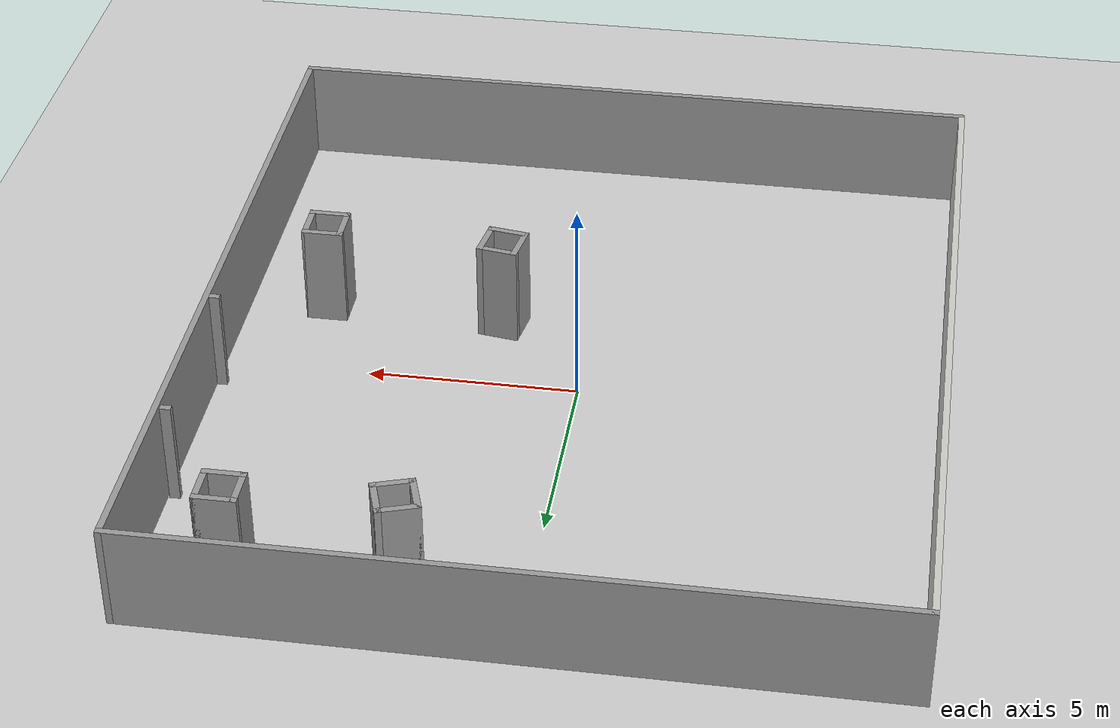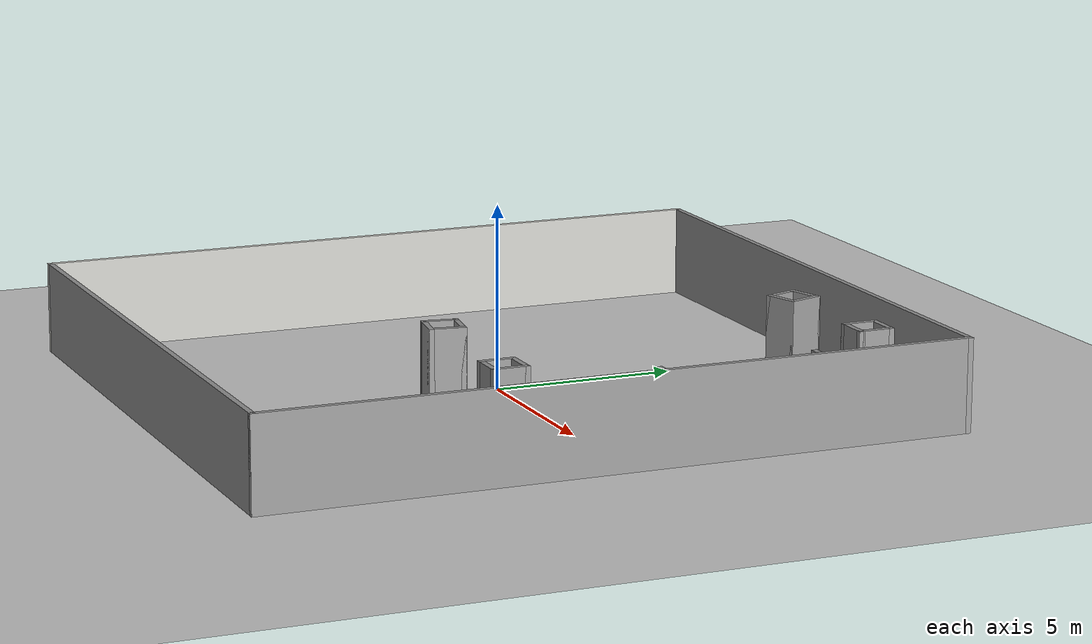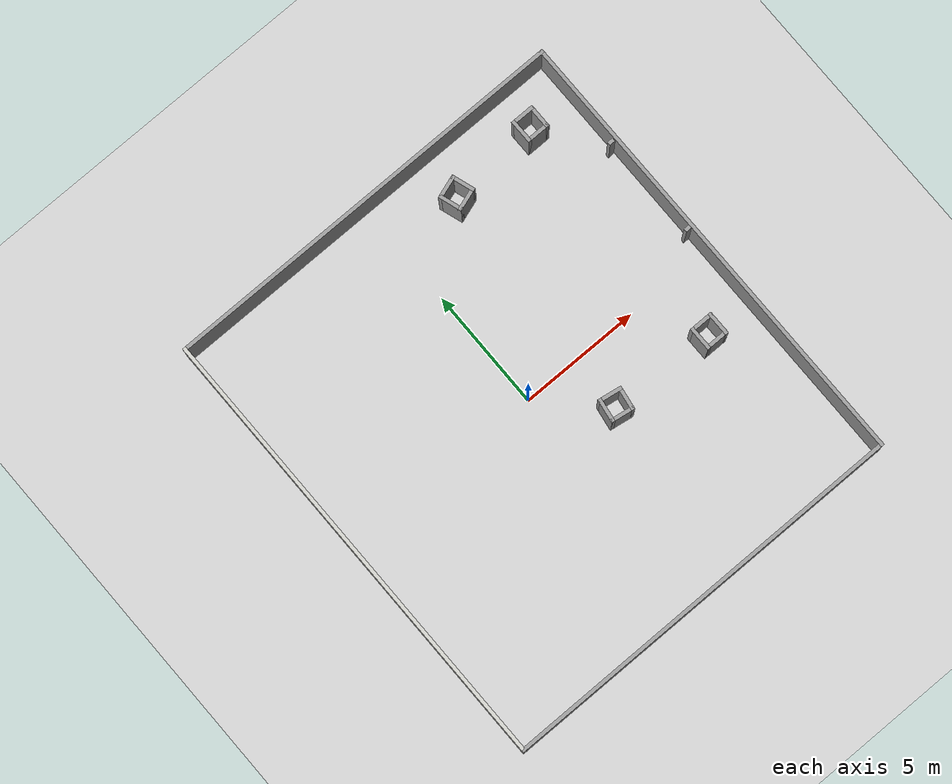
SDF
<sdf version="1.7">
 <world name="default">
  <light name="sun" type="directional">
   <pose>0 0 10 0 -0 0</pose>
   <diffuse>0.8 0.8 0.8 1</diffuse>
   <specular>0.2 0.2 0.2 1</specular>
   <attenuation>
    <range>1000</range>
    <constant>0.9</constant>
    <linear>0.01</linear>
    <quadratic>0.001</quadratic>
   </attenuation>
   <direction>-0.5 0.1 -0.9</direction>
   <spot><inner_angle>0</inner_angle><outer_angle>0</outer_angle><falloff>0</falloff></spot>
  </light>
  <model name="ground_plane">
   <static>1</static>
   <link name="link">
    <collision name="collision">
     <geometry><plane><normal>0 0 1</normal><size>100 100</size></plane></geometry>
     <surface>
      <contact><collide_bitmask>65535</collide_bitmask></contact>
      <friction><ode><mu>100</mu><mu2>50</mu2></ode></friction>
     </surface>
    </collision>
    <visual name="visual">
     <cast_shadows>0</cast_shadows>
     <geometry><plane><normal>0 0 1</normal><size>100 100</size></plane></geometry>
     <material>
      <script><uri>file://media/materials/scripts/gazebo.material</uri><name>Gazebo/Grey</name></script>
     </material>
    </visual>
   </link>
  </model>
  <gravity>0 0 -9.8</gravity>
  <magnetic_field>6e-06 2.3e-05 -4.2e-05</magnetic_field>
  <atmosphere type="adiabatic"/>
  <physics type="ode">
   <max_step_size>0.001</max_step_size>
   <real_time_factor>1</real_time_factor>
   <real_time_update_rate>1000</real_time_update_rate>
  </physics>
  <scene><ambient>0.4 0.4 0.4 1</ambient><background>0.7 0.7 0.7 1</background><shadows>1</shadows></scene>
  <spherical_coordinates>
   <surface_model>EARTH_WGS84</surface_model>
   <latitude_deg>0</latitude_deg>
   <longitude_deg>0</longitude_deg>
   <elevation>0</elevation>
   <heading_deg>0</heading_deg>
  </spherical_coordinates>
  <model name="empty_wall.world">
   <pose>0.015187 -0.215152 0 0 -0 0</pose>
   <link name="Wall_13">
    <collision name="Wall_13_Collision">
     <geometry><box><size>19.25 0.15 2.5</size></box></geometry>
     <pose>0 0 1.25 0 -0 0</pose>
    </collision>
    <visual name="Wall_13_Visual">
     <pose>0 0 1.25 0 -0 0</pose>
     <geometry><box><size>19.25 0.15 2.5</size></box></geometry>
     <material>
      <script><uri>file://media/materials/scripts/gazebo.material</uri><name>Gazebo/CeilingTiled</name></script>
      <ambient>1 1 1 1</ambient>
     </material>
     <meta><layer>0</layer></meta>
    </visual>
    <pose>-8.55 -0 0 0 -0 -1.5708</pose>
   </link>
   <link name="Wall_14">
    <collision name="Wall_14_Collision">
     <geometry><box><size>17.25 0.15 2.5</size></box></geometry>
     <pose>0 0 1.25 0 -0 0</pose>
    </collision>
    <visual name="Wall_14_Visual">
     <pose>0 0 1.25 0 -0 0</pose>
     <geometry><box><size>17.25 0.15 2.5</size></box></geometry>
     <material>
      <script><uri>file://media/materials/scripts/gazebo.material</uri><name>Gazebo/Grey</name></script>
      <ambient>1 1 1 1</ambient>
     </material>
     <meta><layer>0</layer></meta>
    </visual>
    <pose>0 -9.55 0 0 -0 0</pose>
   </link>
   <link name="Wall_15">
    <collision name="Wall_15_Collision">
     <geometry><box><size>19.25 0.15 2.5</size></box></geometry>
     <pose>0 0 1.25 0 -0 0</pose>
    </collision>
    <visual name="Wall_15_Visual">
     <pose>0 0 1.25 0 -0 0</pose>
     <geometry><box><size>19.25 0.15 2.5</size></box></geometry>
     <material>
      <script><uri>file://media/materials/scripts/gazebo.material</uri><name>Gazebo/Grey</name></script>
      <ambient>1 1 1 1</ambient>
     </material>
     <meta><layer>0</layer></meta>
    </visual>
    <pose>8.55 -0 0 0 -0 1.5708</pose>
   </link>
   <link name="Wall_16">
    <collision name="Wall_16_Collision">
     <geometry><box><size>17.25 0.15 2.5</size></box></geometry>
     <pose>0 0 1.25 0 -0 0</pose>
    </collision>
    <visual name="Wall_16_Visual">
     <pose>0 0 1.25 0 -0 0</pose>
     <geometry><box><size>17.25 0.15 2.5</size></box></geometry>
     <material>
      <script><uri>file://media/materials/scripts/gazebo.material</uri><name>Gazebo/Grey</name></script>
      <ambient>1 1 1 1</ambient>
     </material>
     <meta><layer>0</layer></meta>
    </visual>
    <pose>0 9.55 0 0 -0 3.14159</pose>
   </link>
   <static>1</static>
  </model>
  <model name="box1m">
   <pose>7.10884 8.52636 0 0 -0 0</pose>
   <link name="Wall_0">
    <collision name="Wall_0_Collision">
     <geometry><box><size>1 0.15 2.5</size></box></geometry>
     <pose>0 0 1.25 0 -0 0</pose>
    </collision>
    <visual name="Wall_0_Visual">
     <pose>0 0 1.25 0 -0 0</pose>
     <geometry><box><size>1 0.15 2.5</size></box></geometry>
     <material>
      <script><uri>file://media/materials/scripts/gazebo.material</uri><name>Gazebo/Grey</name></script>
      <ambient>1 1 1 1</ambient>
     </material>
     <meta><layer>0</layer></meta>
    </visual>
    <pose>-1.0425 -0.9775 0 0 -0 -1.5708</pose>
   </link>
   <link name="Wall_1">
    <collision name="Wall_1_Collision">
     <geometry><box><size>1 0.15 2.5</size></box></geometry>
     <pose>0 0 1.25 0 -0 0</pose>
    </collision>
    <visual name="Wall_1_Visual">
     <pose>0 0 1.25 0 -0 0</pose>
     <geometry><box><size>1 0.15 2.5</size></box></geometry>
     <material>
      <script><uri>file://media/materials/scripts/gazebo.material</uri><name>Gazebo/Grey</name></script>
      <ambient>1 1 1 1</ambient>
     </material>
     <meta><layer>0</layer></meta>
    </visual>
    <pose>-0.6175 -1.4025 0 0 -0 0</pose>
   </link>
   <link name="Wall_2">
    <collision name="Wall_2_Collision">
     <geometry><box><size>1 0.15 2.5</size></box></geometry>
     <pose>0 0 1.25 0 -0 0</pose>
    </collision>
    <visual name="Wall_2_Visual">
     <pose>0 0 1.25 0 -0 0</pose>
     <geometry><box><size>1 0.15 2.5</size></box></geometry>
     <material>
      <script><uri>file://media/materials/scripts/gazebo.material</uri><name>Gazebo/Grey</name></script>
      <ambient>1 1 1 1</ambient>
     </material>
     <meta><layer>0</layer></meta>
    </visual>
    <pose>-0.1925 -0.9775 0 0 -0 1.5708</pose>
   </link>
   <link name="Wall_3">
    <collision name="Wall_3_Collision">
     <geometry><box><size>1 0.15 2.5</size></box></geometry>
     <pose>0 0 1.25 0 -0 0</pose>
    </collision>
    <visual name="Wall_3_Visual">
     <pose>0 0 1.25 0 -0 0</pose>
     <geometry><box><size>1 0.15 2.5</size></box></geometry>
     <material>
      <script><uri>file://media/materials/scripts/gazebo.material</uri><name>Gazebo/Grey</name></script>
      <ambient>1 1 1 1</ambient>
     </material>
     <meta><layer>0</layer></meta>
    </visual>
    <pose>-0.6175 -0.5525 0 0 -0 3.14159</pose>
   </link>
   <static>1</static>
  </model>
  <model name="box1m_0">
   <pose>7.11731 -1.57017 0 0 -0 0</pose>
   <link name="Wall_0">
    <collision name="Wall_0_Collision">
     <geometry><box><size>1 0.15 2.5</size></box></geometry>
     <pose>0 0 1.25 0 -0 0</pose>
    </collision>
    <visual name="Wall_0_Visual">
     <pose>0 0 1.25 0 -0 0</pose>
     <geometry><box><size>1 0.15 2.5</size></box></geometry>
     <material>
      <script><uri>file://media/materials/scripts/gazebo.material</uri><name>Gazebo/Grey</name></script>
      <ambient>1 1 1 1</ambient>
     </material>
     <meta><layer>0</layer></meta>
    </visual>
    <pose>-1.0425 -0.9775 0 0 -0 -1.5708</pose>
   </link>
   <link name="Wall_1">
    <collision name="Wall_1_Collision">
     <geometry><box><size>1 0.15 2.5</size></box></geometry>
     <pose>0 0 1.25 0 -0 0</pose>
    </collision>
    <visual name="Wall_1_Visual">
     <pose>0 0 1.25 0 -0 0</pose>
     <geometry><box><size>1 0.15 2.5</size></box></geometry>
     <material>
      <script><uri>file://media/materials/scripts/gazebo.material</uri><name>Gazebo/Grey</name></script>
      <ambient>1 1 1 1</ambient>
     </material>
     <meta><layer>0</layer></meta>
    </visual>
    <pose>-0.6175 -1.4025 0 0 -0 0</pose>
   </link>
   <link name="Wall_2">
    <collision name="Wall_2_Collision">
     <geometry><box><size>1 0.15 2.5</size></box></geometry>
     <pose>0 0 1.25 0 -0 0</pose>
    </collision>
    <visual name="Wall_2_Visual">
     <pose>0 0 1.25 0 -0 0</pose>
     <geometry><box><size>1 0.15 2.5</size></box></geometry>
     <material>
      <script><uri>file://media/materials/scripts/gazebo.material</uri><name>Gazebo/Grey</name></script>
      <ambient>1 1 1 1</ambient>
     </material>
     <meta><layer>0</layer></meta>
    </visual>
    <pose>-0.1925 -0.9775 0 0 -0 1.5708</pose>
   </link>
   <link name="Wall_3">
    <collision name="Wall_3_Collision">
     <geometry><box><size>1 0.15 2.5</size></box></geometry>
     <pose>0 0 1.25 0 -0 0</pose>
    </collision>
    <visual name="Wall_3_Visual">
     <pose>0 0 1.25 0 -0 0</pose>
     <geometry><box><size>1 0.15 2.5</size></box></geometry>
     <material>
      <script><uri>file://media/materials/scripts/gazebo.material</uri><name>Gazebo/Grey</name></script>
      <ambient>1 1 1 1</ambient>
     </material>
     <meta><layer>0</layer></meta>
    </visual>
    <pose>-0.6175 -0.5525 0 0 -0 3.14159</pose>
   </link>
   <static>1</static>
  </model>
  <model name="box1m_1">
   <pose>3.04596 8.45832 0 0 -0 0.319034</pose>
   <link name="Wall_0">
    <collision name="Wall_0_Collision">
     <geometry><box><size>1 0.15 2.5</size></box></geometry>
     <pose>0 0 1.25 0 -0 0</pose>
    </collision>
    <visual name="Wall_0_Visual">
     <pose>0 0 1.25 0 -0 0</pose>
     <geometry><box><size>1 0.15 2.5</size></box></geometry>
     <material>
      <script><uri>file://media/materials/scripts/gazebo.material</uri><name>Gazebo/Grey</name></script>
      <ambient>1 1 1 1</ambient>
     </material>
     <meta><layer>0</layer></meta>
    </visual>
    <pose>-1.0425 -0.9775 0 0 -0 -1.5708</pose>
   </link>
   <link name="Wall_1">
    <collision name="Wall_1_Collision">
     <geometry><box><size>1 0.15 2.5</size></box></geometry>
     <pose>0 0 1.25 0 -0 0</pose>
    </collision>
    <visual name="Wall_1_Visual">
     <pose>0 0 1.25 0 -0 0</pose>
     <geometry><box><size>1 0.15 2.5</size></box></geometry>
     <material>
      <script><uri>file://media/materials/scripts/gazebo.material</uri><name>Gazebo/Grey</name></script>
      <ambient>1 1 1 1</ambient>
     </material>
     <meta><layer>0</layer></meta>
    </visual>
    <pose>-0.6175 -1.4025 0 0 -0 0</pose>
   </link>
   <link name="Wall_2">
    <collision name="Wall_2_Collision">
     <geometry><box><size>1 0.15 2.5</size></box></geometry>
     <pose>0 0 1.25 0 -0 0</pose>
    </collision>
    <visual name="Wall_2_Visual">
     <pose>0 0 1.25 0 -0 0</pose>
     <geometry><box><size>1 0.15 2.5</size></box></geometry>
     <material>
      <script><uri>file://media/materials/scripts/gazebo.material</uri><name>Gazebo/Grey</name></script>
      <ambient>1 1 1 1</ambient>
     </material>
     <meta><layer>0</layer></meta>
    </visual>
    <pose>-0.1925 -0.9775 0 0 -0 1.5708</pose>
   </link>
   <link name="Wall_3">
    <collision name="Wall_3_Collision">
     <geometry><box><size>1 0.15 2.5</size></box></geometry>
     <pose>0 0 1.25 0 -0 0</pose>
    </collision>
    <visual name="Wall_3_Visual">
     <pose>0 0 1.25 0 -0 0</pose>
     <geometry><box><size>1 0.15 2.5</size></box></geometry>
     <material>
      <script><uri>file://media/materials/scripts/gazebo.material</uri><name>Gazebo/Grey</name></script>
      <ambient>1 1 1 1</ambient>
     </material>
     <meta><layer>0</layer></meta>
    </visual>
    <pose>-0.6175 -0.5525 0 0 -0 3.14159</pose>
   </link>
   <static>1</static>
  </model>
  <model name="box1m_2">
   <pose>2.91568 -1.52865 0 0 0 -0.155838</pose>
   <link name="Wall_0">
    <collision name="Wall_0_Collision">
     <geometry><box><size>1 0.15 2.5</size></box></geometry>
     <pose>0 0 1.25 0 -0 0</pose>
    </collision>
    <visual name="Wall_0_Visual">
     <pose>0 0 1.25 0 -0 0</pose>
     <geometry><box><size>1 0.15 2.5</size></box></geometry>
     <material>
      <script><uri>file://media/materials/scripts/gazebo.material</uri><name>Gazebo/Grey</name></script>
      <ambient>1 1 1 1</ambient>
     </material>
     <meta><layer>0</layer></meta>
    </visual>
    <pose>-1.0425 -0.9775 0 0 -0 -1.5708</pose>
   </link>
   <link name="Wall_1">
    <collision name="Wall_1_Collision">
     <geometry><box><size>1 0.15 2.5</size></box></geometry>
     <pose>0 0 1.25 0 -0 0</pose>
    </collision>
    <visual name="Wall_1_Visual">
     <pose>0 0 1.25 0 -0 0</pose>
     <geometry><box><size>1 0.15 2.5</size></box></geometry>
     <material>
      <script><uri>file://media/materials/scripts/gazebo.material</uri><name>Gazebo/Grey</name></script>
      <ambient>1 1 1 1</ambient>
     </material>
     <meta><layer>0</layer></meta>
    </visual>
    <pose>-0.6175 -1.4025 0 0 -0 0</pose>
   </link>
   <link name="Wall_2">
    <collision name="Wall_2_Collision">
     <geometry><box><size>1 0.15 2.5</size></box></geometry>
     <pose>0 0 1.25 0 -0 0</pose>
    </collision>
    <visual name="Wall_2_Visual">
     <pose>0 0 1.25 0 -0 0</pose>
     <geometry><box><size>1 0.15 2.5</size></box></geometry>
     <material>
      <script><uri>file://media/materials/scripts/gazebo.material</uri><name>Gazebo/Grey</name></script>
      <ambient>1 1 1 1</ambient>
     </material>
     <meta><layer>0</layer></meta>
    </visual>
    <pose>-0.1925 -0.9775 0 0 -0 1.5708</pose>
   </link>
   <link name="Wall_3">
    <collision name="Wall_3_Collision">
     <geometry><box><size>1 0.15 2.5</size></box></geometry>
     <pose>0 0 1.25 0 -0 0</pose>
    </collision>
    <visual name="Wall_3_Visual">
     <pose>0 0 1.25 0 -0 0</pose>
     <geometry><box><size>1 0.15 2.5</size></box></geometry>
     <material>
      <script><uri>file://media/materials/scripts/gazebo.material</uri><name>Gazebo/Grey</name></script>
      <ambient>1 1 1 1</ambient>
     </material>
     <meta><layer>0</layer></meta>
    </visual>
    <pose>-0.6175 -0.5525 0 0 -0 3.14159</pose>
   </link>
   <static>1</static>
  </model>
  <model name="Untitled">
   <pose>7.30647 7.01932 0 0 -0 0</pose>
   <link name="Wall_0">
    <collision name="Wall_0_Collision">
     <geometry><box><size>0.25 0.15 2.5</size></box></geometry>
     <pose>0 0 1.25 0 -0 0</pose>
    </collision>
    <visual name="Wall_0_Visual">
     <pose>0 0 1.25 0 -0 0</pose>
     <geometry><box><size>0.25 0.15 2.5</size></box></geometry>
     <material>
      <script><uri>file://media/materials/scripts/gazebo.material</uri><name>Gazebo/Grey</name></script>
      <ambient>1 1 1 1</ambient>
     </material>
     <meta><layer>0</layer></meta>
    </visual>
    <pose>1.0225 -1.9075 0 0 -0 0</pose>
   </link>
   <static>1</static>
  </model>
  <model name="Untitled_clone">
   <pose>7.34698 2.7481 0 0 -0 0</pose>
   <link name="Wall_0">
    <collision name="Wall_0_Collision">
     <geometry><box><size>0.25 0.15 2.5</size></box></geometry>
     <pose>0 0 1.25 0 -0 0</pose>
    </collision>
    <visual name="Wall_0_Visual">
     <pose>0 0 1.25 0 -0 0</pose>
     <geometry><box><size>0.25 0.15 2.5</size></box></geometry>
     <material>
      <script><uri>file://media/materials/scripts/gazebo.material</uri><name>Gazebo/Grey</name></script>
      <ambient>1 1 1 1</ambient>
     </material>
     <meta><layer>0</layer></meta>
    </visual>
    <pose>1.0225 -1.9075 0 0 -0 0</pose>
   </link>
   <static>1</static>
  </model>
 </world>
</sdf>
